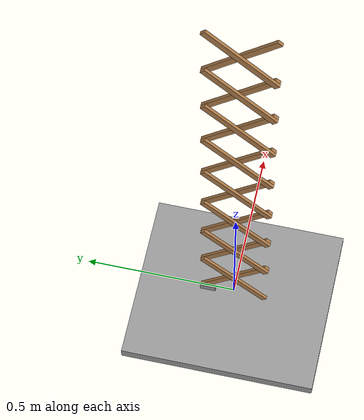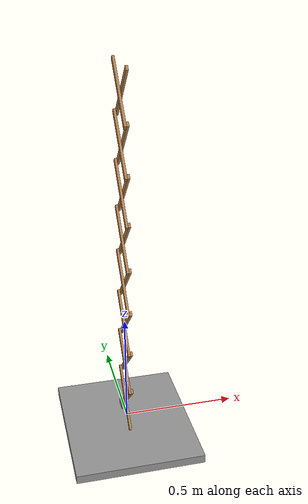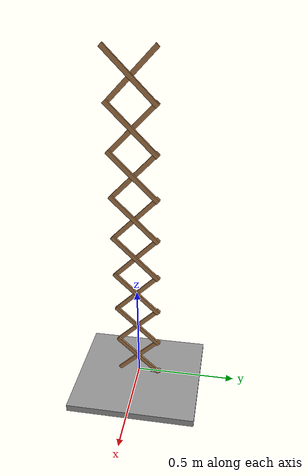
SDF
<sdf version="1.6">
 <model name="Robordion_leg_2_1">
  <link name="link_B_0">
   <pose>0.005 -0 0.098994 -0.785398 0 0</pose>
   <inertial>
    <mass>0.042</mass>
    <inertia>
     <ixx>0.0003164</ixx>
     <ixy>0</ixy>
     <ixz>0</ixz>
     <iyy>1.75e-06</iyy>
     <iyz>0</iyz>
     <izz>0.00031535</izz>
    </inertia>
   </inertial>
   <visual name="visual">
    <geometry><box><size>0.01 0.3 0.02</size></box></geometry>
    <material>
     <lighting>1</lighting>
     <script><uri>file://media/materials/scripts/gazebo.material</uri><name>Gazebo/Wood</name></script>
     <ambient>0.3 0.3 0.3 1</ambient>
     <diffuse>0.7 0.7 0.7 1</diffuse>
     <specular>0.01 0.01 0.01 1</specular>
     <emissive>0 0 0 1</emissive>
     <shader type="vertex"><normal_map>__default__</normal_map></shader>
    </material>
   </visual>
   <collision name="collision">
    <geometry><box><size>0.01 0.3 0.02</size></box></geometry>
    <surface>
     <friction>
      <ode><mu>1</mu><mu2>1</mu2><fdir1>0 0 0</fdir1><slip1>0</slip1><slip2>0</slip2></ode>
      <torsional>
       <coefficient>1</coefficient>
       <patch_radius>0</patch_radius>
       <surface_radius>0</surface_radius>
       <use_patch_radius>1</use_patch_radius>
       <ode><slip>0</slip></ode>
      </torsional>
     </friction>
     <bounce><restitution_coefficient>0</restitution_coefficient><threshold>1e+06</threshold></bounce>
     <contact>
      <collide_without_contact>0</collide_without_contact>
      <collide_without_contact_bitmask>1</collide_without_contact_bitmask>
      <collide_bitmask>1</collide_bitmask>
      <ode>
       <soft_cfm>0</soft_cfm>
       <soft_erp>0.2</soft_erp>
       <kp>1e+13</kp>
       <kd>1</kd>
       <max_vel>0.01</max_vel>
       <min_depth>0</min_depth>
      </ode>
      <bullet>
       <split_impulse>1</split_impulse>
       <split_impulse_penetration_threshold>-0.01</split_impulse_penetration_threshold>
       <soft_cfm>0</soft_cfm>
       <soft_erp>0.2</soft_erp>
       <kp>1e+13</kp>
       <kd>1</kd>
      </bullet>
     </contact>
    </surface>
   </collision>
  </link>
  <link name="link_A_0">
   <pose>-0.005 0 0.098994 0.785398 -0 0</pose>
   <inertial>
    <mass>0.042</mass>
    <inertia>
     <ixx>0.0003164</ixx>
     <ixy>0</ixy>
     <ixz>0</ixz>
     <iyy>1.75e-06</iyy>
     <iyz>0</iyz>
     <izz>0.00031535</izz>
    </inertia>
   </inertial>
   <visual name="visual_0">
    <geometry><box><size>0.01 0.3 0.02</size></box></geometry>
    <material>
     <lighting>1</lighting>
     <script><uri>file://media/materials/scripts/gazebo.material</uri><name>Gazebo/Wood</name></script>
     <ambient>0.3 0.3 0.3 1</ambient>
     <diffuse>0.7 0.7 0.7 1</diffuse>
     <specular>0.01 0.01 0.01 1</specular>
     <emissive>0 0 0 1</emissive>
     <shader type="vertex"><normal_map>__default__</normal_map></shader>
    </material>
   </visual>
   <collision name="collision">
    <geometry><box><size>0.01 0.3 0.02</size></box></geometry>
    <surface>
     <friction>
      <ode><mu>1</mu><mu2>1</mu2><fdir1>0 0 0</fdir1><slip1>0</slip1><slip2>0</slip2></ode>
      <torsional>
       <coefficient>1</coefficient>
       <patch_radius>0</patch_radius>
       <surface_radius>0</surface_radius>
       <use_patch_radius>1</use_patch_radius>
       <ode><slip>0</slip></ode>
      </torsional>
     </friction>
     <bounce><restitution_coefficient>0</restitution_coefficient><threshold>1e+06</threshold></bounce>
     <contact>
      <collide_without_contact>0</collide_without_contact>
      <collide_without_contact_bitmask>1</collide_without_contact_bitmask>
      <collide_bitmask>1</collide_bitmask>
      <ode>
       <soft_cfm>0</soft_cfm>
       <soft_erp>0.2</soft_erp>
       <kp>1e+13</kp>
       <kd>1</kd>
       <max_vel>0.01</max_vel>
       <min_depth>0</min_depth>
      </ode>
      <bullet>
       <split_impulse>1</split_impulse>
       <split_impulse_penetration_threshold>-0.01</split_impulse_penetration_threshold>
       <soft_cfm>0</soft_cfm>
       <soft_erp>0.2</soft_erp>
       <kp>1e+13</kp>
       <kd>1</kd>
      </bullet>
     </contact>
    </surface>
   </collision>
  </link>
  <link name="link_0_1_clone_0">
   <pose>0.005 -0 0.296984 -0.785398 0 0</pose>
   <inertial>
    <mass>0.042</mass>
    <inertia>
     <ixx>0.0003164</ixx>
     <ixy>0</ixy>
     <ixz>0</ixz>
     <iyy>1.75e-06</iyy>
     <iyz>0</iyz>
     <izz>0.00031535</izz>
    </inertia>
   </inertial>
   <visual name="visual_0">
    <geometry><box><size>0.01 0.3 0.02</size></box></geometry>
    <material>
     <lighting>1</lighting>
     <script><uri>file://media/materials/scripts/gazebo.material</uri><name>Gazebo/Wood</name></script>
     <ambient>0.3 0.3 0.3 1</ambient>
     <diffuse>0.7 0.7 0.7 1</diffuse>
     <specular>0.01 0.01 0.01 1</specular>
     <emissive>0 0 0 1</emissive>
     <shader type="vertex"><normal_map>__default__</normal_map></shader>
    </material>
   </visual>
   <collision name="collision">
    <geometry><box><size>0.01 0.3 0.02</size></box></geometry>
    <surface>
     <friction>
      <ode><mu>1</mu><mu2>1</mu2><fdir1>0 0 0</fdir1><slip1>0</slip1><slip2>0</slip2></ode>
      <torsional>
       <coefficient>1</coefficient>
       <patch_radius>0</patch_radius>
       <surface_radius>0</surface_radius>
       <use_patch_radius>1</use_patch_radius>
       <ode><slip>0</slip></ode>
      </torsional>
     </friction>
     <bounce><restitution_coefficient>0</restitution_coefficient><threshold>1e+06</threshold></bounce>
     <contact>
      <collide_without_contact>0</collide_without_contact>
      <collide_without_contact_bitmask>1</collide_without_contact_bitmask>
      <collide_bitmask>1</collide_bitmask>
      <ode>
       <soft_cfm>0</soft_cfm>
       <soft_erp>0.2</soft_erp>
       <kp>1e+13</kp>
       <kd>1</kd>
       <max_vel>0.01</max_vel>
       <min_depth>0</min_depth>
      </ode>
      <bullet>
       <split_impulse>1</split_impulse>
       <split_impulse_penetration_threshold>-0.01</split_impulse_penetration_threshold>
       <soft_cfm>0</soft_cfm>
       <soft_erp>0.2</soft_erp>
       <kp>1e+13</kp>
       <kd>1</kd>
      </bullet>
     </contact>
    </surface>
   </collision>
  </link>
  <link name="link_0_1_clone_clone">
   <pose>-0.005 -0 0.296984 0.785398 -0 0</pose>
   <inertial>
    <mass>0.042</mass>
    <inertia>
     <ixx>0.0003164</ixx>
     <ixy>0</ixy>
     <ixz>0</ixz>
     <iyy>1.75e-06</iyy>
     <iyz>0</iyz>
     <izz>0.00031535</izz>
    </inertia>
   </inertial>
   <visual name="visual_0">
    <geometry><box><size>0.01 0.3 0.02</size></box></geometry>
    <material>
     <lighting>1</lighting>
     <script><uri>file://media/materials/scripts/gazebo.material</uri><name>Gazebo/Wood</name></script>
     <ambient>0.3 0.3 0.3 1</ambient>
     <diffuse>0.7 0.7 0.7 1</diffuse>
     <specular>0.01 0.01 0.01 1</specular>
     <emissive>0 0 0 1</emissive>
     <shader type="vertex"><normal_map>__default__</normal_map></shader>
    </material>
   </visual>
   <collision name="collision">
    <geometry><box><size>0.01 0.3 0.02</size></box></geometry>
    <surface>
     <friction>
      <ode><mu>1</mu><mu2>1</mu2><fdir1>0 0 0</fdir1><slip1>0</slip1><slip2>0</slip2></ode>
      <torsional>
       <coefficient>1</coefficient>
       <patch_radius>0</patch_radius>
       <surface_radius>0</surface_radius>
       <use_patch_radius>1</use_patch_radius>
       <ode><slip>0</slip></ode>
      </torsional>
     </friction>
     <bounce><restitution_coefficient>0</restitution_coefficient><threshold>1e+06</threshold></bounce>
     <contact>
      <collide_without_contact>0</collide_without_contact>
      <collide_without_contact_bitmask>1</collide_without_contact_bitmask>
      <collide_bitmask>1</collide_bitmask>
      <ode>
       <soft_cfm>0</soft_cfm>
       <soft_erp>0.2</soft_erp>
       <kp>1e+13</kp>
       <kd>1</kd>
       <max_vel>0.01</max_vel>
       <min_depth>0</min_depth>
      </ode>
      <bullet>
       <split_impulse>1</split_impulse>
       <split_impulse_penetration_threshold>-0.01</split_impulse_penetration_threshold>
       <soft_cfm>0</soft_cfm>
       <soft_erp>0.2</soft_erp>
       <kp>1e+13</kp>
       <kd>1</kd>
      </bullet>
     </contact>
    </surface>
   </collision>
  </link>
  <link name="link_0_1_clone_clone_0">
   <pose>-0.005 -0 0.494974 0.785398 -0 0</pose>
   <inertial>
    <mass>0.042</mass>
    <inertia>
     <ixx>0.0003164</ixx>
     <ixy>0</ixy>
     <ixz>0</ixz>
     <iyy>1.75e-06</iyy>
     <iyz>0</iyz>
     <izz>0.00031535</izz>
    </inertia>
   </inertial>
   <visual name="visual_0">
    <geometry><box><size>0.01 0.3 0.02</size></box></geometry>
    <material>
     <lighting>1</lighting>
     <script><uri>file://media/materials/scripts/gazebo.material</uri><name>Gazebo/Wood</name></script>
     <ambient>0.3 0.3 0.3 1</ambient>
     <diffuse>0.7 0.7 0.7 1</diffuse>
     <specular>0.01 0.01 0.01 1</specular>
     <emissive>0 0 0 1</emissive>
     <shader type="vertex"><normal_map>__default__</normal_map></shader>
    </material>
   </visual>
   <collision name="collision">
    <geometry><box><size>0.01 0.3 0.02</size></box></geometry>
    <surface>
     <friction>
      <ode><mu>1</mu><mu2>1</mu2><fdir1>0 0 0</fdir1><slip1>0</slip1><slip2>0</slip2></ode>
      <torsional>
       <coefficient>1</coefficient>
       <patch_radius>0</patch_radius>
       <surface_radius>0</surface_radius>
       <use_patch_radius>1</use_patch_radius>
       <ode><slip>0</slip></ode>
      </torsional>
     </friction>
     <bounce><restitution_coefficient>0</restitution_coefficient><threshold>1e+06</threshold></bounce>
     <contact>
      <collide_without_contact>0</collide_without_contact>
      <collide_without_contact_bitmask>1</collide_without_contact_bitmask>
      <collide_bitmask>1</collide_bitmask>
      <ode>
       <soft_cfm>0</soft_cfm>
       <soft_erp>0.2</soft_erp>
       <kp>1e+13</kp>
       <kd>1</kd>
       <max_vel>0.01</max_vel>
       <min_depth>0</min_depth>
      </ode>
      <bullet>
       <split_impulse>1</split_impulse>
       <split_impulse_penetration_threshold>-0.01</split_impulse_penetration_threshold>
       <soft_cfm>0</soft_cfm>
       <soft_erp>0.2</soft_erp>
       <kp>1e+13</kp>
       <kd>1</kd>
      </bullet>
     </contact>
    </surface>
   </collision>
  </link>
  <link name="link_0_1_clone_clone_0_clone">
   <pose>0.005 -0 0.494974 -0.785398 0 0</pose>
   <inertial>
    <mass>0.042</mass>
    <inertia>
     <ixx>0.0003164</ixx>
     <ixy>0</ixy>
     <ixz>0</ixz>
     <iyy>1.75e-06</iyy>
     <iyz>0</iyz>
     <izz>0.00031535</izz>
    </inertia>
   </inertial>
   <visual name="visual_0">
    <geometry><box><size>0.01 0.3 0.02</size></box></geometry>
    <material>
     <lighting>1</lighting>
     <script><uri>file://media/materials/scripts/gazebo.material</uri><name>Gazebo/Wood</name></script>
     <ambient>0.3 0.3 0.3 1</ambient>
     <diffuse>0.7 0.7 0.7 1</diffuse>
     <specular>0.01 0.01 0.01 1</specular>
     <emissive>0 0 0 1</emissive>
     <shader type="vertex"><normal_map>__default__</normal_map></shader>
    </material>
   </visual>
   <collision name="collision">
    <geometry><box><size>0.01 0.3 0.02</size></box></geometry>
    <surface>
     <friction>
      <ode><mu>1</mu><mu2>1</mu2><fdir1>0 0 0</fdir1><slip1>0</slip1><slip2>0</slip2></ode>
      <torsional>
       <coefficient>1</coefficient>
       <patch_radius>0</patch_radius>
       <surface_radius>0</surface_radius>
       <use_patch_radius>1</use_patch_radius>
       <ode><slip>0</slip></ode>
      </torsional>
     </friction>
     <bounce><restitution_coefficient>0</restitution_coefficient><threshold>1e+06</threshold></bounce>
     <contact>
      <collide_without_contact>0</collide_without_contact>
      <collide_without_contact_bitmask>1</collide_without_contact_bitmask>
      <collide_bitmask>1</collide_bitmask>
      <ode>
       <soft_cfm>0</soft_cfm>
       <soft_erp>0.2</soft_erp>
       <kp>1e+13</kp>
       <kd>1</kd>
       <max_vel>0.01</max_vel>
       <min_depth>0</min_depth>
      </ode>
      <bullet>
       <split_impulse>1</split_impulse>
       <split_impulse_penetration_threshold>-0.01</split_impulse_penetration_threshold>
       <soft_cfm>0</soft_cfm>
       <soft_erp>0.2</soft_erp>
       <kp>1e+13</kp>
       <kd>1</kd>
      </bullet>
     </contact>
    </surface>
   </collision>
  </link>
  <link name="link_0_1_clone_clone_0_clone_clone">
   <pose>0.005 0 0.692964 -0.785398 0 0</pose>
   <inertial>
    <mass>0.042</mass>
    <inertia>
     <ixx>0.0003164</ixx>
     <ixy>0</ixy>
     <ixz>0</ixz>
     <iyy>1.75e-06</iyy>
     <iyz>0</iyz>
     <izz>0.00031535</izz>
    </inertia>
   </inertial>
   <visual name="visual_0">
    <geometry><box><size>0.01 0.3 0.02</size></box></geometry>
    <material>
     <lighting>1</lighting>
     <script><uri>file://media/materials/scripts/gazebo.material</uri><name>Gazebo/Wood</name></script>
     <ambient>0.3 0.3 0.3 1</ambient>
     <diffuse>0.7 0.7 0.7 1</diffuse>
     <specular>0.01 0.01 0.01 1</specular>
     <emissive>0 0 0 1</emissive>
     <shader type="vertex"><normal_map>__default__</normal_map></shader>
    </material>
   </visual>
   <collision name="collision">
    <geometry><box><size>0.01 0.3 0.02</size></box></geometry>
    <surface>
     <friction>
      <ode><mu>1</mu><mu2>1</mu2><fdir1>0 0 0</fdir1><slip1>0</slip1><slip2>0</slip2></ode>
      <torsional>
       <coefficient>1</coefficient>
       <patch_radius>0</patch_radius>
       <surface_radius>0</surface_radius>
       <use_patch_radius>1</use_patch_radius>
       <ode><slip>0</slip></ode>
      </torsional>
     </friction>
     <bounce><restitution_coefficient>0</restitution_coefficient><threshold>1e+06</threshold></bounce>
     <contact>
      <collide_without_contact>0</collide_without_contact>
      <collide_without_contact_bitmask>1</collide_without_contact_bitmask>
      <collide_bitmask>1</collide_bitmask>
      <ode>
       <soft_cfm>0</soft_cfm>
       <soft_erp>0.2</soft_erp>
       <kp>1e+13</kp>
       <kd>1</kd>
       <max_vel>0.01</max_vel>
       <min_depth>0</min_depth>
      </ode>
      <bullet>
       <split_impulse>1</split_impulse>
       <split_impulse_penetration_threshold>-0.01</split_impulse_penetration_threshold>
       <soft_cfm>0</soft_cfm>
       <soft_erp>0.2</soft_erp>
       <kp>1e+13</kp>
       <kd>1</kd>
      </bullet>
     </contact>
    </surface>
   </collision>
  </link>
  <link name="link_0_1_clone_clone_0_clone_clone_clone">
   <pose>-0.005 -0 0.692964 0.785398 -0 0</pose>
   <inertial>
    <mass>0.042</mass>
    <inertia>
     <ixx>0.0003164</ixx>
     <ixy>0</ixy>
     <ixz>0</ixz>
     <iyy>1.75e-06</iyy>
     <iyz>0</iyz>
     <izz>0.00031535</izz>
    </inertia>
   </inertial>
   <visual name="visual_0">
    <geometry><box><size>0.01 0.3 0.02</size></box></geometry>
    <material>
     <lighting>1</lighting>
     <script><uri>file://media/materials/scripts/gazebo.material</uri><name>Gazebo/Wood</name></script>
     <ambient>0.3 0.3 0.3 1</ambient>
     <diffuse>0.7 0.7 0.7 1</diffuse>
     <specular>0.01 0.01 0.01 1</specular>
     <emissive>0 0 0 1</emissive>
     <shader type="vertex"><normal_map>__default__</normal_map></shader>
    </material>
   </visual>
   <collision name="collision">
    <geometry><box><size>0.01 0.3 0.02</size></box></geometry>
    <surface>
     <friction>
      <ode><mu>1</mu><mu2>1</mu2><fdir1>0 0 0</fdir1><slip1>0</slip1><slip2>0</slip2></ode>
      <torsional>
       <coefficient>1</coefficient>
       <patch_radius>0</patch_radius>
       <surface_radius>0</surface_radius>
       <use_patch_radius>1</use_patch_radius>
       <ode><slip>0</slip></ode>
      </torsional>
     </friction>
     <bounce><restitution_coefficient>0</restitution_coefficient><threshold>1e+06</threshold></bounce>
     <contact>
      <collide_without_contact>0</collide_without_contact>
      <collide_without_contact_bitmask>1</collide_without_contact_bitmask>
      <collide_bitmask>1</collide_bitmask>
      <ode>
       <soft_cfm>0</soft_cfm>
       <soft_erp>0.2</soft_erp>
       <kp>1e+13</kp>
       <kd>1</kd>
       <max_vel>0.01</max_vel>
       <min_depth>0</min_depth>
      </ode>
      <bullet>
       <split_impulse>1</split_impulse>
       <split_impulse_penetration_threshold>-0.01</split_impulse_penetration_threshold>
       <soft_cfm>0</soft_cfm>
       <soft_erp>0.2</soft_erp>
       <kp>1e+13</kp>
       <kd>1</kd>
      </bullet>
     </contact>
    </surface>
   </collision>
  </link>
  <link name="link_0_1_clone_clone_0_clone_clone_clone_0">
   <pose>0.005 0 0.890954 -0.785398 0 0</pose>
   <inertial>
    <mass>0.042</mass>
    <inertia>
     <ixx>0.0003164</ixx>
     <ixy>0</ixy>
     <ixz>0</ixz>
     <iyy>1.75e-06</iyy>
     <iyz>0</iyz>
     <izz>0.00031535</izz>
    </inertia>
   </inertial>
   <visual name="visual_0">
    <geometry><box><size>0.01 0.3 0.02</size></box></geometry>
    <material>
     <lighting>1</lighting>
     <script><uri>file://media/materials/scripts/gazebo.material</uri><name>Gazebo/Wood</name></script>
     <ambient>0.3 0.3 0.3 1</ambient>
     <diffuse>0.7 0.7 0.7 1</diffuse>
     <specular>0.01 0.01 0.01 1</specular>
     <emissive>0 0 0 1</emissive>
     <shader type="vertex"><normal_map>__default__</normal_map></shader>
    </material>
   </visual>
   <collision name="collision">
    <geometry><box><size>0.01 0.3 0.02</size></box></geometry>
    <surface>
     <friction>
      <ode><mu>1</mu><mu2>1</mu2><fdir1>0 0 0</fdir1><slip1>0</slip1><slip2>0</slip2></ode>
      <torsional>
       <coefficient>1</coefficient>
       <patch_radius>0</patch_radius>
       <surface_radius>0</surface_radius>
       <use_patch_radius>1</use_patch_radius>
       <ode><slip>0</slip></ode>
      </torsional>
     </friction>
     <bounce><restitution_coefficient>0</restitution_coefficient><threshold>1e+06</threshold></bounce>
     <contact>
      <collide_without_contact>0</collide_without_contact>
      <collide_without_contact_bitmask>1</collide_without_contact_bitmask>
      <collide_bitmask>1</collide_bitmask>
      <ode>
       <soft_cfm>0</soft_cfm>
       <soft_erp>0.2</soft_erp>
       <kp>1e+13</kp>
       <kd>1</kd>
       <max_vel>0.01</max_vel>
       <min_depth>0</min_depth>
      </ode>
      <bullet>
       <split_impulse>1</split_impulse>
       <split_impulse_penetration_threshold>-0.01</split_impulse_penetration_threshold>
       <soft_cfm>0</soft_cfm>
       <soft_erp>0.2</soft_erp>
       <kp>1e+13</kp>
       <kd>1</kd>
      </bullet>
     </contact>
    </surface>
   </collision>
  </link>
  <link name="link_0_1_clone_clone_0_clone_clone_clone_0_clone">
   <pose>-0.005 -0 0.890954 0.785398 -0 0</pose>
   <inertial>
    <mass>0.042</mass>
    <inertia>
     <ixx>0.0003164</ixx>
     <ixy>0</ixy>
     <ixz>0</ixz>
     <iyy>1.75e-06</iyy>
     <iyz>0</iyz>
     <izz>0.00031535</izz>
    </inertia>
   </inertial>
   <visual name="visual_0">
    <geometry><box><size>0.01 0.3 0.02</size></box></geometry>
    <material>
     <lighting>1</lighting>
     <script><uri>file://media/materials/scripts/gazebo.material</uri><name>Gazebo/Wood</name></script>
     <ambient>0.3 0.3 0.3 1</ambient>
     <diffuse>0.7 0.7 0.7 1</diffuse>
     <specular>0.01 0.01 0.01 1</specular>
     <emissive>0 0 0 1</emissive>
     <shader type="vertex"><normal_map>__default__</normal_map></shader>
    </material>
   </visual>
   <collision name="collision">
    <geometry><box><size>0.01 0.3 0.02</size></box></geometry>
    <surface>
     <friction>
      <ode><mu>1</mu><mu2>1</mu2><fdir1>0 0 0</fdir1><slip1>0</slip1><slip2>0</slip2></ode>
      <torsional>
       <coefficient>1</coefficient>
       <patch_radius>0</patch_radius>
       <surface_radius>0</surface_radius>
       <use_patch_radius>1</use_patch_radius>
       <ode><slip>0</slip></ode>
      </torsional>
     </friction>
     <bounce><restitution_coefficient>0</restitution_coefficient><threshold>1e+06</threshold></bounce>
     <contact>
      <collide_without_contact>0</collide_without_contact>
      <collide_without_contact_bitmask>1</collide_without_contact_bitmask>
      <collide_bitmask>1</collide_bitmask>
      <ode>
       <soft_cfm>0</soft_cfm>
       <soft_erp>0.2</soft_erp>
       <kp>1e+13</kp>
       <kd>1</kd>
       <max_vel>0.01</max_vel>
       <min_depth>0</min_depth>
      </ode>
      <bullet>
       <split_impulse>1</split_impulse>
       <split_impulse_penetration_threshold>-0.01</split_impulse_penetration_threshold>
       <soft_cfm>0</soft_cfm>
       <soft_erp>0.2</soft_erp>
       <kp>1e+13</kp>
       <kd>1</kd>
      </bullet>
     </contact>
    </surface>
   </collision>
  </link>
  <link name="link_0_1_clone_clone_0_clone_clone_clone_0_clone_0">
   <pose>0.005 0 1.08894 -0.785398 0 0</pose>
   <inertial>
    <mass>0.042</mass>
    <inertia>
     <ixx>0.0003164</ixx>
     <ixy>0</ixy>
     <ixz>0</ixz>
     <iyy>1.75e-06</iyy>
     <iyz>0</iyz>
     <izz>0.00031535</izz>
    </inertia>
   </inertial>
   <visual name="visual_0">
    <geometry><box><size>0.01 0.3 0.02</size></box></geometry>
    <material>
     <lighting>1</lighting>
     <script><uri>file://media/materials/scripts/gazebo.material</uri><name>Gazebo/Wood</name></script>
     <ambient>0.3 0.3 0.3 1</ambient>
     <diffuse>0.7 0.7 0.7 1</diffuse>
     <specular>0.01 0.01 0.01 1</specular>
     <emissive>0 0 0 1</emissive>
     <shader type="vertex"><normal_map>__default__</normal_map></shader>
    </material>
   </visual>
   <collision name="collision">
    <geometry><box><size>0.01 0.3 0.02</size></box></geometry>
    <surface>
     <friction>
      <ode><mu>1</mu><mu2>1</mu2><fdir1>0 0 0</fdir1><slip1>0</slip1><slip2>0</slip2></ode>
      <torsional>
       <coefficient>1</coefficient>
       <patch_radius>0</patch_radius>
       <surface_radius>0</surface_radius>
       <use_patch_radius>1</use_patch_radius>
       <ode><slip>0</slip></ode>
      </torsional>
     </friction>
     <bounce><restitution_coefficient>0</restitution_coefficient><threshold>1e+06</threshold></bounce>
     <contact>
      <collide_without_contact>0</collide_without_contact>
      <collide_without_contact_bitmask>1</collide_without_contact_bitmask>
      <collide_bitmask>1</collide_bitmask>
      <ode>
       <soft_cfm>0</soft_cfm>
       <soft_erp>0.2</soft_erp>
       <kp>1e+13</kp>
       <kd>1</kd>
       <max_vel>0.01</max_vel>
       <min_depth>0</min_depth>
      </ode>
      <bullet>
       <split_impulse>1</split_impulse>
       <split_impulse_penetration_threshold>-0.01</split_impulse_penetration_threshold>
       <soft_cfm>0</soft_cfm>
       <soft_erp>0.2</soft_erp>
       <kp>1e+13</kp>
       <kd>1</kd>
      </bullet>
     </contact>
    </surface>
   </collision>
  </link>
  <link name="link_0_1_clone_clone_0_clone_clone_clone_0_clone_0_clone">
   <pose>-0.005 -0 1.08894 0.785398 -0 0</pose>
   <inertial>
    <mass>0.042</mass>
    <inertia>
     <ixx>0.0003164</ixx>
     <ixy>0</ixy>
     <ixz>0</ixz>
     <iyy>1.75e-06</iyy>
     <iyz>0</iyz>
     <izz>0.00031535</izz>
    </inertia>
   </inertial>
   <visual name="visual_0">
    <geometry><box><size>0.01 0.3 0.02</size></box></geometry>
    <material>
     <lighting>1</lighting>
     <script><uri>file://media/materials/scripts/gazebo.material</uri><name>Gazebo/Wood</name></script>
     <ambient>0.3 0.3 0.3 1</ambient>
     <diffuse>0.7 0.7 0.7 1</diffuse>
     <specular>0.01 0.01 0.01 1</specular>
     <emissive>0 0 0 1</emissive>
     <shader type="vertex"><normal_map>__default__</normal_map></shader>
    </material>
   </visual>
   <collision name="collision">
    <geometry><box><size>0.01 0.3 0.02</size></box></geometry>
    <surface>
     <friction>
      <ode><mu>1</mu><mu2>1</mu2><fdir1>0 0 0</fdir1><slip1>0</slip1><slip2>0</slip2></ode>
      <torsional>
       <coefficient>1</coefficient>
       <patch_radius>0</patch_radius>
       <surface_radius>0</surface_radius>
       <use_patch_radius>1</use_patch_radius>
       <ode><slip>0</slip></ode>
      </torsional>
     </friction>
     <bounce><restitution_coefficient>0</restitution_coefficient><threshold>1e+06</threshold></bounce>
     <contact>
      <collide_without_contact>0</collide_without_contact>
      <collide_without_contact_bitmask>1</collide_without_contact_bitmask>
      <collide_bitmask>1</collide_bitmask>
      <ode>
       <soft_cfm>0</soft_cfm>
       <soft_erp>0.2</soft_erp>
       <kp>1e+13</kp>
       <kd>1</kd>
       <max_vel>0.01</max_vel>
       <min_depth>0</min_depth>
      </ode>
      <bullet>
       <split_impulse>1</split_impulse>
       <split_impulse_penetration_threshold>-0.01</split_impulse_penetration_threshold>
       <soft_cfm>0</soft_cfm>
       <soft_erp>0.2</soft_erp>
       <kp>1e+13</kp>
       <kd>1</kd>
      </bullet>
     </contact>
    </surface>
   </collision>
  </link>
  <link name="link_0_1_clone_clone_0_clone_clone_clone_0_clone_0_clone_0">
   <pose>0.005 0 1.28693 -0.785398 0 0</pose>
   <inertial>
    <mass>0.042</mass>
    <inertia>
     <ixx>0.0003164</ixx>
     <ixy>0</ixy>
     <ixz>0</ixz>
     <iyy>1.75e-06</iyy>
     <iyz>0</iyz>
     <izz>0.00031535</izz>
    </inertia>
   </inertial>
   <visual name="visual_0">
    <geometry><box><size>0.01 0.3 0.02</size></box></geometry>
    <material>
     <lighting>1</lighting>
     <script><uri>file://media/materials/scripts/gazebo.material</uri><name>Gazebo/Wood</name></script>
     <ambient>0.3 0.3 0.3 1</ambient>
     <diffuse>0.7 0.7 0.7 1</diffuse>
     <specular>0.01 0.01 0.01 1</specular>
     <emissive>0 0 0 1</emissive>
     <shader type="vertex"><normal_map>__default__</normal_map></shader>
    </material>
   </visual>
   <collision name="collision">
    <geometry><box><size>0.01 0.3 0.02</size></box></geometry>
    <surface>
     <friction>
      <ode><mu>1</mu><mu2>1</mu2><fdir1>0 0 0</fdir1><slip1>0</slip1><slip2>0</slip2></ode>
      <torsional>
       <coefficient>1</coefficient>
       <patch_radius>0</patch_radius>
       <surface_radius>0</surface_radius>
       <use_patch_radius>1</use_patch_radius>
       <ode><slip>0</slip></ode>
      </torsional>
     </friction>
     <bounce><restitution_coefficient>0</restitution_coefficient><threshold>1e+06</threshold></bounce>
     <contact>
      <collide_without_contact>0</collide_without_contact>
      <collide_without_contact_bitmask>1</collide_without_contact_bitmask>
      <collide_bitmask>1</collide_bitmask>
      <ode>
       <soft_cfm>0</soft_cfm>
       <soft_erp>0.2</soft_erp>
       <kp>1e+13</kp>
       <kd>1</kd>
       <max_vel>0.01</max_vel>
       <min_depth>0</min_depth>
      </ode>
      <bullet>
       <split_impulse>1</split_impulse>
       <split_impulse_penetration_threshold>-0.01</split_impulse_penetration_threshold>
       <soft_cfm>0</soft_cfm>
       <soft_erp>0.2</soft_erp>
       <kp>1e+13</kp>
       <kd>1</kd>
      </bullet>
     </contact>
    </surface>
   </collision>
  </link>
  <link name="link_0_1_clone_clone_0_clone_clone_clone_0_clone_0_clone_0_clone">
   <pose>-0.005 0 1.28693 0.785398 -0 0</pose>
   <inertial>
    <mass>0.042</mass>
    <inertia>
     <ixx>0.0003164</ixx>
     <ixy>0</ixy>
     <ixz>0</ixz>
     <iyy>1.75e-06</iyy>
     <iyz>0</iyz>
     <izz>0.00031535</izz>
    </inertia>
   </inertial>
   <visual name="visual_0">
    <geometry><box><size>0.01 0.3 0.02</size></box></geometry>
    <material>
     <lighting>1</lighting>
     <script><uri>file://media/materials/scripts/gazebo.material</uri><name>Gazebo/Wood</name></script>
     <ambient>0.3 0.3 0.3 1</ambient>
     <diffuse>0.7 0.7 0.7 1</diffuse>
     <specular>0.01 0.01 0.01 1</specular>
     <emissive>0 0 0 1</emissive>
     <shader type="vertex"><normal_map>__default__</normal_map></shader>
    </material>
   </visual>
   <collision name="collision">
    <geometry><box><size>0.01 0.3 0.02</size></box></geometry>
    <surface>
     <friction>
      <ode><mu>1</mu><mu2>1</mu2><fdir1>0 0 0</fdir1><slip1>0</slip1><slip2>0</slip2></ode>
      <torsional>
       <coefficient>1</coefficient>
       <patch_radius>0</patch_radius>
       <surface_radius>0</surface_radius>
       <use_patch_radius>1</use_patch_radius>
       <ode><slip>0</slip></ode>
      </torsional>
     </friction>
     <bounce><restitution_coefficient>0</restitution_coefficient><threshold>1e+06</threshold></bounce>
     <contact>
      <collide_without_contact>0</collide_without_contact>
      <collide_without_contact_bitmask>1</collide_without_contact_bitmask>
      <collide_bitmask>1</collide_bitmask>
      <ode>
       <soft_cfm>0</soft_cfm>
       <soft_erp>0.2</soft_erp>
       <kp>1e+13</kp>
       <kd>1</kd>
       <max_vel>0.01</max_vel>
       <min_depth>0</min_depth>
      </ode>
      <bullet>
       <split_impulse>1</split_impulse>
       <split_impulse_penetration_threshold>-0.01</split_impulse_penetration_threshold>
       <soft_cfm>0</soft_cfm>
       <soft_erp>0.2</soft_erp>
       <kp>1e+13</kp>
       <kd>1</kd>
      </bullet>
     </contact>
    </surface>
   </collision>
  </link>
  <link name="link_0_1_clone_clone_0_clone_clone_clone_0_clone_0_clone_0_clone_0">
   <pose>0.005 0 1.48492 -0.785398 0 0</pose>
   <inertial>
    <mass>0.042</mass>
    <inertia>
     <ixx>0.0003164</ixx>
     <ixy>0</ixy>
     <ixz>0</ixz>
     <iyy>1.75e-06</iyy>
     <iyz>0</iyz>
     <izz>0.00031535</izz>
    </inertia>
   </inertial>
   <visual name="visual_0">
    <geometry><box><size>0.01 0.3 0.02</size></box></geometry>
    <material>
     <lighting>1</lighting>
     <script><uri>file://media/materials/scripts/gazebo.material</uri><name>Gazebo/Wood</name></script>
     <ambient>0.3 0.3 0.3 1</ambient>
     <diffuse>0.7 0.7 0.7 1</diffuse>
     <specular>0.01 0.01 0.01 1</specular>
     <emissive>0 0 0 1</emissive>
     <shader type="vertex"><normal_map>__default__</normal_map></shader>
    </material>
   </visual>
   <collision name="collision">
    <geometry><box><size>0.01 0.3 0.02</size></box></geometry>
    <surface>
     <friction>
      <ode><mu>1</mu><mu2>1</mu2><fdir1>0 0 0</fdir1><slip1>0</slip1><slip2>0</slip2></ode>
      <torsional>
       <coefficient>1</coefficient>
       <patch_radius>0</patch_radius>
       <surface_radius>0</surface_radius>
       <use_patch_radius>1</use_patch_radius>
       <ode><slip>0</slip></ode>
      </torsional>
     </friction>
     <bounce><restitution_coefficient>0</restitution_coefficient><threshold>1e+06</threshold></bounce>
     <contact>
      <collide_without_contact>0</collide_without_contact>
      <collide_without_contact_bitmask>1</collide_without_contact_bitmask>
      <collide_bitmask>1</collide_bitmask>
      <ode>
       <soft_cfm>0</soft_cfm>
       <soft_erp>0.2</soft_erp>
       <kp>1e+13</kp>
       <kd>1</kd>
       <max_vel>0.01</max_vel>
       <min_depth>0</min_depth>
      </ode>
      <bullet>
       <split_impulse>1</split_impulse>
       <split_impulse_penetration_threshold>-0.01</split_impulse_penetration_threshold>
       <soft_cfm>0</soft_cfm>
       <soft_erp>0.2</soft_erp>
       <kp>1e+13</kp>
       <kd>1</kd>
      </bullet>
     </contact>
    </surface>
   </collision>
  </link>
  <link name="link_0_1_clone_clone_0_clone_clone_clone_0_clone_0_clone_0_clone_0_clone">
   <pose>-0.005 0 1.48492 0.785398 -0 0</pose>
   <inertial>
    <mass>0.042</mass>
    <inertia>
     <ixx>0.0003164</ixx>
     <ixy>0</ixy>
     <ixz>0</ixz>
     <iyy>1.75e-06</iyy>
     <iyz>0</iyz>
     <izz>0.00031535</izz>
    </inertia>
   </inertial>
   <visual name="visual_0">
    <geometry><box><size>0.01 0.3 0.02</size></box></geometry>
    <material>
     <lighting>1</lighting>
     <script><uri>file://media/materials/scripts/gazebo.material</uri><name>Gazebo/Wood</name></script>
     <ambient>0.3 0.3 0.3 1</ambient>
     <diffuse>0.7 0.7 0.7 1</diffuse>
     <specular>0.01 0.01 0.01 1</specular>
     <emissive>0 0 0 1</emissive>
     <shader type="vertex"><normal_map>__default__</normal_map></shader>
    </material>
   </visual>
   <collision name="collision">
    <geometry><box><size>0.01 0.3 0.02</size></box></geometry>
    <surface>
     <friction>
      <ode><mu>1</mu><mu2>1</mu2><fdir1>0 0 0</fdir1><slip1>0</slip1><slip2>0</slip2></ode>
      <torsional>
       <coefficient>1</coefficient>
       <patch_radius>0</patch_radius>
       <surface_radius>0</surface_radius>
       <use_patch_radius>1</use_patch_radius>
       <ode><slip>0</slip></ode>
      </torsional>
     </friction>
     <bounce><restitution_coefficient>0</restitution_coefficient><threshold>1e+06</threshold></bounce>
     <contact>
      <collide_without_contact>0</collide_without_contact>
      <collide_without_contact_bitmask>1</collide_without_contact_bitmask>
      <collide_bitmask>1</collide_bitmask>
      <ode>
       <soft_cfm>0</soft_cfm>
       <soft_erp>0.2</soft_erp>
       <kp>1e+13</kp>
       <kd>1</kd>
       <max_vel>0.01</max_vel>
       <min_depth>0</min_depth>
      </ode>
      <bullet>
       <split_impulse>1</split_impulse>
       <split_impulse_penetration_threshold>-0.01</split_impulse_penetration_threshold>
       <soft_cfm>0</soft_cfm>
       <soft_erp>0.2</soft_erp>
       <kp>1e+13</kp>
       <kd>1</kd>
      </bullet>
     </contact>
    </surface>
   </collision>
  </link>
  <link name="slider_link">
   <pose>-0.005402 0.08727 -0.002108 0 -0 0</pose>
   <inertial>
    <mass>0.104936</mass>
    <inertia>
     <ixx>2.847e-05</ixx>
     <ixy>0</ixy>
     <ixz>0</ixz>
     <iyy>6.09e-06</iyy>
     <iyz>0</iyz>
     <izz>2.442e-05</izz>
    </inertia>
   </inertial>
   <visual name="visual">
    <geometry><box><size>0.010804 0.051733 0.02407</size></box></geometry>
    <material>
     <lighting>1</lighting>
     <script><uri>file://media/materials/scripts/gazebo.material</uri><name>Gazebo/Grey</name></script>
     <ambient>0.3 0.3 0.3 1</ambient>
     <diffuse>0.7 0.7 0.7 1</diffuse>
     <specular>0.01 0.01 0.01 1</specular>
     <emissive>0 0 0 1</emissive>
     <shader type="vertex"><normal_map>__default__</normal_map></shader>
    </material>
   </visual>
   <collision name="collision">
    <geometry><box><size>0.010804 0.051733 0.02407</size></box></geometry>
    <surface>
     <friction>
      <ode><mu>1</mu><mu2>1</mu2><fdir1>0 0 0</fdir1><slip1>0</slip1><slip2>0</slip2></ode>
      <torsional>
       <coefficient>1</coefficient>
       <patch_radius>0</patch_radius>
       <surface_radius>0</surface_radius>
       <use_patch_radius>1</use_patch_radius>
       <ode><slip>0</slip></ode>
      </torsional>
     </friction>
     <bounce><restitution_coefficient>0</restitution_coefficient><threshold>1e+06</threshold></bounce>
     <contact>
      <collide_without_contact>0</collide_without_contact>
      <collide_without_contact_bitmask>1</collide_without_contact_bitmask>
      <collide_bitmask>1</collide_bitmask>
      <ode>
       <soft_cfm>0</soft_cfm>
       <soft_erp>0.2</soft_erp>
       <kp>1e+13</kp>
       <kd>1</kd>
       <max_vel>0.01</max_vel>
       <min_depth>0</min_depth>
      </ode>
      <bullet>
       <split_impulse>1</split_impulse>
       <split_impulse_penetration_threshold>-0.01</split_impulse_penetration_threshold>
       <soft_cfm>0</soft_cfm>
       <soft_erp>0.2</soft_erp>
       <kp>1e+13</kp>
       <kd>1</kd>
      </bullet>
     </contact>
    </surface>
   </collision>
  </link>
  <link name="link_2">
   <pose>-0 0 -0.05 0 -0 0</pose>
   <inertial>
    <mass>108.654</mass>
    <inertia><ixx>3.7658</ixx><ixy>0</ixy><ixz>0</ixz><iyy>2.91659</iyy><iyz>0</iyz><izz>6.65595</izz></inertia>
   </inertial>
   <visual name="visual">
    <geometry><box><size>0.566232 0.643749 0.038213</size></box></geometry>
    <material>
     <lighting>1</lighting>
     <script><uri>file://media/materials/scripts/gazebo.material</uri><name>Gazebo/Grey</name></script>
     <ambient>0.3 0.3 0.3 1</ambient>
     <diffuse>0.7 0.7 0.7 1</diffuse>
     <specular>0.01 0.01 0.01 1</specular>
     <emissive>0 0 0 1</emissive>
     <shader type="vertex"><normal_map>__default__</normal_map></shader>
    </material>
   </visual>
   <collision name="collision">
    <geometry><box><size>0.566232 0.643749 0.038213</size></box></geometry>
    <surface>
     <friction>
      <ode><mu>1</mu><mu2>1</mu2><fdir1>0 0 0</fdir1><slip1>0</slip1><slip2>0</slip2></ode>
      <torsional>
       <coefficient>1</coefficient>
       <patch_radius>0</patch_radius>
       <surface_radius>0</surface_radius>
       <use_patch_radius>1</use_patch_radius>
       <ode><slip>0</slip></ode>
      </torsional>
     </friction>
     <bounce><restitution_coefficient>0</restitution_coefficient><threshold>1e+06</threshold></bounce>
     <contact>
      <collide_without_contact>0</collide_without_contact>
      <collide_without_contact_bitmask>1</collide_without_contact_bitmask>
      <collide_bitmask>1</collide_bitmask>
      <ode>
       <soft_cfm>0</soft_cfm>
       <soft_erp>0.2</soft_erp>
       <kp>1e+13</kp>
       <kd>1</kd>
       <max_vel>0.01</max_vel>
       <min_depth>0</min_depth>
      </ode>
      <bullet>
       <split_impulse>1</split_impulse>
       <split_impulse_penetration_threshold>-0.01</split_impulse_penetration_threshold>
       <soft_cfm>0</soft_cfm>
       <soft_erp>0.2</soft_erp>
       <kp>1e+13</kp>
       <kd>1</kd>
      </bullet>
     </contact>
    </surface>
   </collision>
  </link>
  <joint name="base_slider" type="prismatic">
   <parent>link_2</parent>
   <child>slider_link</child>
   <axis>
    <xyz>0 1 0</xyz>
    <use_parent_model_frame>0</use_parent_model_frame>
    <limit><lower>-1</lower><upper>1</upper><effort>-1</effort><velocity>-1</velocity></limit>
    <dynamics>
     <spring_reference>0</spring_reference>
     <spring_stiffness>0</spring_stiffness>
     <damping>0</damping>
     <friction>0</friction>
    </dynamics>
   </axis>
   <physics>
    <ode><limit><cfm>0</cfm><erp>0.2</erp></limit><suspension><cfm>0</cfm><erp>0.2</erp></suspension></ode>
   </physics>
  </joint>
  <joint name="rev_A_0" type="revolute">
   <parent>link_2</parent>
   <child>link_A_0</child>
   <pose>0 -0.14 0 0 -0 0</pose>
   <axis>
    <xyz>1 0 0</xyz>
    <use_parent_model_frame>0</use_parent_model_frame>
    <limit><lower>-1.2</lower><upper>1.2</upper><effort>-1</effort><velocity>-1</velocity></limit>
    <dynamics>
     <spring_reference>0</spring_reference>
     <spring_stiffness>0</spring_stiffness>
     <damping>0</damping>
     <friction>0</friction>
    </dynamics>
   </axis>
   <physics>
    <ode><limit><cfm>0</cfm><erp>0.2</erp></limit><suspension><cfm>0</cfm><erp>0.2</erp></suspension></ode>
   </physics>
  </joint>
  <joint name="rev_A_1" type="revolute">
   <parent>link_A_0</parent>
   <child>link_0_1_clone_0</child>
   <pose>0 0.14 0 0 -0 0</pose>
   <axis>
    <xyz>1 0 0</xyz>
    <use_parent_model_frame>0</use_parent_model_frame>
    <limit><lower>-1.2</lower><upper>1.2</upper><effort>-1</effort><velocity>-1</velocity></limit>
    <dynamics>
     <spring_reference>0</spring_reference>
     <spring_stiffness>0</spring_stiffness>
     <damping>0</damping>
     <friction>0</friction>
    </dynamics>
   </axis>
   <physics>
    <ode><limit><cfm>0</cfm><erp>0.2</erp></limit><suspension><cfm>0</cfm><erp>0.2</erp></suspension></ode>
   </physics>
  </joint>
  <joint name="rev_A_2" type="revolute">
   <parent>link_0_1_clone_0</parent>
   <child>link_0_1_clone_clone_0</child>
   <pose>0 -0.14 0 0 -0 0</pose>
   <axis>
    <xyz>1 0 0</xyz>
    <use_parent_model_frame>0</use_parent_model_frame>
    <limit><lower>-1.2</lower><upper>1.2</upper><effort>-1</effort><velocity>-1</velocity></limit>
    <dynamics>
     <spring_reference>0</spring_reference>
     <spring_stiffness>0</spring_stiffness>
     <damping>0</damping>
     <friction>0</friction>
    </dynamics>
   </axis>
   <physics>
    <ode><limit><cfm>0</cfm><erp>0.2</erp></limit><suspension><cfm>0</cfm><erp>0.2</erp></suspension></ode>
   </physics>
  </joint>
  <joint name="rev_A_3" type="revolute">
   <parent>link_0_1_clone_clone_0</parent>
   <child>link_0_1_clone_clone_0_clone_clone</child>
   <pose>0 0.14 0 0 -0 0</pose>
   <axis>
    <xyz>1 0 0</xyz>
    <use_parent_model_frame>0</use_parent_model_frame>
    <limit><lower>-1.2</lower><upper>1.2</upper><effort>-1</effort><velocity>-1</velocity></limit>
    <dynamics>
     <spring_reference>0</spring_reference>
     <spring_stiffness>0</spring_stiffness>
     <damping>0</damping>
     <friction>0</friction>
    </dynamics>
   </axis>
   <physics>
    <ode><limit><cfm>0</cfm><erp>0.2</erp></limit><suspension><cfm>0</cfm><erp>0.2</erp></suspension></ode>
   </physics>
  </joint>
  <joint name="rev_A_4" type="revolute">
   <parent>link_0_1_clone_clone_0_clone_clone</parent>
   <child>link_0_1_clone_clone_0_clone_clone_clone_0_clone</child>
   <pose>0 -0.14 0 0 -0 0</pose>
   <axis>
    <xyz>1 0 0</xyz>
    <use_parent_model_frame>0</use_parent_model_frame>
    <limit><lower>-1.2</lower><upper>1.2</upper><effort>-1</effort><velocity>-1</velocity></limit>
    <dynamics>
     <spring_reference>0</spring_reference>
     <spring_stiffness>0</spring_stiffness>
     <damping>0</damping>
     <friction>0</friction>
    </dynamics>
   </axis>
   <physics>
    <ode><limit><cfm>0</cfm><erp>0.2</erp></limit><suspension><cfm>0</cfm><erp>0.2</erp></suspension></ode>
   </physics>
  </joint>
  <joint name="rev_A_5" type="revolute">
   <parent>link_0_1_clone_clone_0_clone_clone_clone_0_clone</parent>
   <child>link_0_1_clone_clone_0_clone_clone_clone_0_clone_0</child>
   <pose>0 0.14 0 0 -0 0</pose>
   <axis>
    <xyz>1 0 0</xyz>
    <use_parent_model_frame>0</use_parent_model_frame>
    <limit><lower>-1.2</lower><upper>1.2</upper><effort>-1</effort><velocity>-1</velocity></limit>
    <dynamics>
     <spring_reference>0</spring_reference>
     <spring_stiffness>0</spring_stiffness>
     <damping>0</damping>
     <friction>0</friction>
    </dynamics>
   </axis>
   <physics>
    <ode><limit><cfm>0</cfm><erp>0.2</erp></limit><suspension><cfm>0</cfm><erp>0.2</erp></suspension></ode>
   </physics>
  </joint>
  <joint name="rev_A_6" type="revolute">
   <parent>link_0_1_clone_clone_0_clone_clone_clone_0_clone_0</parent>
   <child>link_0_1_clone_clone_0_clone_clone_clone_0_clone_0_clone_0_clone</child>
   <pose>0 -0.14 0 0 -0 0</pose>
   <axis>
    <xyz>1 0 0</xyz>
    <use_parent_model_frame>0</use_parent_model_frame>
    <limit><lower>-1.2</lower><upper>1.2</upper><effort>-1</effort><velocity>-1</velocity></limit>
    <dynamics>
     <spring_reference>0</spring_reference>
     <spring_stiffness>0</spring_stiffness>
     <damping>0</damping>
     <friction>0</friction>
    </dynamics>
   </axis>
   <physics>
    <ode><limit><cfm>0</cfm><erp>0.2</erp></limit><suspension><cfm>0</cfm><erp>0.2</erp></suspension></ode>
   </physics>
  </joint>
  <joint name="rev_A_7" type="revolute">
   <parent>link_0_1_clone_clone_0_clone_clone_clone_0_clone_0_clone_0_clone</parent>
   <child>link_0_1_clone_clone_0_clone_clone_clone_0_clone_0_clone_0_clone_0</child>
   <pose>0 0.14 0 0 -0 0</pose>
   <axis>
    <xyz>1 0 0</xyz>
    <use_parent_model_frame>0</use_parent_model_frame>
    <limit><lower>-1.2</lower><upper>1.2</upper><effort>-1</effort><velocity>-1</velocity></limit>
    <dynamics>
     <spring_reference>0</spring_reference>
     <spring_stiffness>0</spring_stiffness>
     <damping>0</damping>
     <friction>0</friction>
    </dynamics>
   </axis>
   <physics>
    <ode><limit><cfm>0</cfm><erp>0.2</erp></limit><suspension><cfm>0</cfm><erp>0.2</erp></suspension></ode>
   </physics>
  </joint>
  <joint name="rev_B_0" type="revolute">
   <parent>slider_link</parent>
   <child>link_B_0</child>
   <pose>0 0.14 0 0 -0 0</pose>
   <axis>
    <xyz>1 0 0</xyz>
    <use_parent_model_frame>0</use_parent_model_frame>
    <limit><lower>-1.2</lower><upper>1.2</upper><effort>-1</effort><velocity>-1</velocity></limit>
    <dynamics>
     <spring_reference>0</spring_reference>
     <spring_stiffness>0</spring_stiffness>
     <damping>0</damping>
     <friction>0</friction>
    </dynamics>
   </axis>
   <physics>
    <ode><limit><cfm>0</cfm><erp>0.2</erp></limit><suspension><cfm>0</cfm><erp>0.2</erp></suspension></ode>
   </physics>
  </joint>
  <joint name="rev_B_1" type="revolute">
   <parent>link_B_0</parent>
   <child>link_0_1_clone_clone</child>
   <pose>0 -0.14 0 0 -0 0</pose>
   <axis>
    <xyz>1 0 0</xyz>
    <use_parent_model_frame>0</use_parent_model_frame>
    <limit><lower>-1.2</lower><upper>1.2</upper><effort>-1</effort><velocity>-1</velocity></limit>
    <dynamics>
     <spring_reference>0</spring_reference>
     <spring_stiffness>0</spring_stiffness>
     <damping>0</damping>
     <friction>0</friction>
    </dynamics>
   </axis>
   <physics>
    <ode><limit><cfm>0</cfm><erp>0.2</erp></limit><suspension><cfm>0</cfm><erp>0.2</erp></suspension></ode>
   </physics>
  </joint>
  <joint name="rev_B_2" type="revolute">
   <parent>link_0_1_clone_clone</parent>
   <child>link_0_1_clone_clone_0_clone</child>
   <pose>0 0.14 0 0 -0 0</pose>
   <axis>
    <xyz>1 0 0</xyz>
    <use_parent_model_frame>0</use_parent_model_frame>
    <limit><lower>-1.2</lower><upper>1.2</upper><effort>-1</effort><velocity>-1</velocity></limit>
    <dynamics>
     <spring_reference>0</spring_reference>
     <spring_stiffness>0</spring_stiffness>
     <damping>0</damping>
     <friction>0</friction>
    </dynamics>
   </axis>
   <physics>
    <ode><limit><cfm>0</cfm><erp>0.2</erp></limit><suspension><cfm>0</cfm><erp>0.2</erp></suspension></ode>
   </physics>
  </joint>
  <joint name="rev_B_3" type="revolute">
   <parent>link_0_1_clone_clone_0_clone</parent>
   <child>link_0_1_clone_clone_0_clone_clone_clone</child>
   <pose>0 -0.14 0 0 -0 0</pose>
   <axis>
    <xyz>1 0 0</xyz>
    <use_parent_model_frame>0</use_parent_model_frame>
    <limit><lower>-1.2</lower><upper>1.2</upper><effort>-1</effort><velocity>-1</velocity></limit>
    <dynamics>
     <spring_reference>0</spring_reference>
     <spring_stiffness>0</spring_stiffness>
     <damping>0</damping>
     <friction>0</friction>
    </dynamics>
   </axis>
   <physics>
    <ode><limit><cfm>0</cfm><erp>0.2</erp></limit><suspension><cfm>0</cfm><erp>0.2</erp></suspension></ode>
   </physics>
  </joint>
  <joint name="rev_B_4" type="revolute">
   <parent>link_0_1_clone_clone_0_clone_clone_clone</parent>
   <child>link_0_1_clone_clone_0_clone_clone_clone_0</child>
   <pose>0 0.14 0 0 -0 0</pose>
   <axis>
    <xyz>1 0 0</xyz>
    <use_parent_model_frame>0</use_parent_model_frame>
    <limit><lower>-1.2</lower><upper>1.2</upper><effort>-1</effort><velocity>-1</velocity></limit>
    <dynamics>
     <spring_reference>0</spring_reference>
     <spring_stiffness>0</spring_stiffness>
     <damping>0</damping>
     <friction>0</friction>
    </dynamics>
   </axis>
   <physics>
    <ode><limit><cfm>0</cfm><erp>0.2</erp></limit><suspension><cfm>0</cfm><erp>0.2</erp></suspension></ode>
   </physics>
  </joint>
  <joint name="rev_B_5" type="revolute">
   <parent>link_0_1_clone_clone_0_clone_clone_clone_0</parent>
   <child>link_0_1_clone_clone_0_clone_clone_clone_0_clone_0_clone</child>
   <pose>0 -0.14 0 0 -0 0</pose>
   <axis>
    <xyz>1 0 0</xyz>
    <use_parent_model_frame>0</use_parent_model_frame>
    <limit><lower>-1.2</lower><upper>1.2</upper><effort>-1</effort><velocity>-1</velocity></limit>
    <dynamics>
     <spring_reference>0</spring_reference>
     <spring_stiffness>0</spring_stiffness>
     <damping>0</damping>
     <friction>0</friction>
    </dynamics>
   </axis>
   <physics>
    <ode><limit><cfm>0</cfm><erp>0.2</erp></limit><suspension><cfm>0</cfm><erp>0.2</erp></suspension></ode>
   </physics>
  </joint>
  <joint name="rev_B_6" type="revolute">
   <parent>link_0_1_clone_clone_0_clone_clone_clone_0_clone_0_clone</parent>
   <child>link_0_1_clone_clone_0_clone_clone_clone_0_clone_0_clone_0</child>
   <pose>0 0.14 0 0 -0 0</pose>
   <axis>
    <xyz>1 0 0</xyz>
    <use_parent_model_frame>0</use_parent_model_frame>
    <limit><lower>-1.2</lower><upper>1.2</upper><effort>-1</effort><velocity>-1</velocity></limit>
    <dynamics>
     <spring_reference>0</spring_reference>
     <spring_stiffness>0</spring_stiffness>
     <damping>0</damping>
     <friction>0</friction>
    </dynamics>
   </axis>
   <physics>
    <ode><limit><cfm>0</cfm><erp>0.2</erp></limit><suspension><cfm>0</cfm><erp>0.2</erp></suspension></ode>
   </physics>
  </joint>
  <joint name="rev_B_7" type="revolute">
   <parent>link_0_1_clone_clone_0_clone_clone_clone_0_clone_0_clone_0</parent>
   <child>link_0_1_clone_clone_0_clone_clone_clone_0_clone_0_clone_0_clone_0_clone</child>
   <pose>0 -0.14 0 0 -0 0</pose>
   <axis>
    <xyz>1 0 0</xyz>
    <use_parent_model_frame>0</use_parent_model_frame>
    <limit><lower>-1.2</lower><upper>1.2</upper><effort>-1</effort><velocity>-1</velocity></limit>
    <dynamics>
     <spring_reference>0</spring_reference>
     <spring_stiffness>0</spring_stiffness>
     <damping>0</damping>
     <friction>0</friction>
    </dynamics>
   </axis>
   <physics>
    <ode><limit><cfm>0</cfm><erp>0.2</erp></limit><suspension><cfm>0</cfm><erp>0.2</erp></suspension></ode>
   </physics>
  </joint>
  <joint name="rev_pin_0" type="revolute">
   <parent>link_A_0</parent>
   <child>link_B_0</child>
   <axis>
    <xyz>1 0 0</xyz>
    <use_parent_model_frame>0</use_parent_model_frame>
    <limit><lower>-1.57</lower><upper>1.57</upper><effort>-1</effort><velocity>-1</velocity></limit>
    <dynamics>
     <spring_reference>0</spring_reference>
     <spring_stiffness>0</spring_stiffness>
     <damping>0</damping>
     <friction>0</friction>
    </dynamics>
   </axis>
   <physics>
    <ode><limit><cfm>0</cfm><erp>0.2</erp></limit><suspension><cfm>0</cfm><erp>0.2</erp></suspension></ode>
   </physics>
  </joint>
  <joint name="rev_pin_1" type="revolute">
   <parent>link_0_1_clone_clone</parent>
   <child>link_0_1_clone_0</child>
   <axis>
    <xyz>1 0 0</xyz>
    <use_parent_model_frame>0</use_parent_model_frame>
    <limit><lower>-1.57</lower><upper>1.57</upper><effort>-1</effort><velocity>-1</velocity></limit>
    <dynamics>
     <spring_reference>0</spring_reference>
     <spring_stiffness>0</spring_stiffness>
     <damping>0</damping>
     <friction>0</friction>
    </dynamics>
   </axis>
   <physics>
    <ode><limit><cfm>0</cfm><erp>0.2</erp></limit><suspension><cfm>0</cfm><erp>0.2</erp></suspension></ode>
   </physics>
  </joint>
  <joint name="rev_pin_2" type="revolute">
   <parent>link_0_1_clone_clone_0</parent>
   <child>link_0_1_clone_clone_0_clone</child>
   <axis>
    <xyz>1 0 0</xyz>
    <use_parent_model_frame>0</use_parent_model_frame>
    <limit><lower>-1.57</lower><upper>1.57</upper><effort>-1</effort><velocity>-1</velocity></limit>
    <dynamics>
     <spring_reference>0</spring_reference>
     <spring_stiffness>0</spring_stiffness>
     <damping>0</damping>
     <friction>0</friction>
    </dynamics>
   </axis>
   <physics>
    <ode><limit><cfm>0</cfm><erp>0.2</erp></limit><suspension><cfm>0</cfm><erp>0.2</erp></suspension></ode>
   </physics>
  </joint>
  <joint name="rev_pin_3" type="revolute">
   <parent>link_0_1_clone_clone_0_clone_clone_clone</parent>
   <child>link_0_1_clone_clone_0_clone_clone</child>
   <axis>
    <xyz>1 0 0</xyz>
    <use_parent_model_frame>0</use_parent_model_frame>
    <limit><lower>-1.57</lower><upper>1.57</upper><effort>-1</effort><velocity>-1</velocity></limit>
    <dynamics>
     <spring_reference>0</spring_reference>
     <spring_stiffness>0</spring_stiffness>
     <damping>0</damping>
     <friction>0</friction>
    </dynamics>
   </axis>
   <physics>
    <ode><limit><cfm>0</cfm><erp>0.2</erp></limit><suspension><cfm>0</cfm><erp>0.2</erp></suspension></ode>
   </physics>
  </joint>
  <joint name="rev_pin_4" type="revolute">
   <parent>link_0_1_clone_clone_0_clone_clone_clone_0_clone</parent>
   <child>link_0_1_clone_clone_0_clone_clone_clone_0</child>
   <axis>
    <xyz>1 0 0</xyz>
    <use_parent_model_frame>0</use_parent_model_frame>
    <limit><lower>-1.57</lower><upper>1.57</upper><effort>-1</effort><velocity>-1</velocity></limit>
    <dynamics>
     <spring_reference>0</spring_reference>
     <spring_stiffness>0</spring_stiffness>
     <damping>0</damping>
     <friction>0</friction>
    </dynamics>
   </axis>
   <physics>
    <ode><limit><cfm>0</cfm><erp>0.2</erp></limit><suspension><cfm>0</cfm><erp>0.2</erp></suspension></ode>
   </physics>
  </joint>
  <joint name="rev_pin_5" type="revolute">
   <parent>link_0_1_clone_clone_0_clone_clone_clone_0_clone_0_clone</parent>
   <child>link_0_1_clone_clone_0_clone_clone_clone_0_clone_0</child>
   <axis>
    <xyz>1 0 0</xyz>
    <use_parent_model_frame>0</use_parent_model_frame>
    <limit><lower>-1.57</lower><upper>1.57</upper><effort>-1</effort><velocity>-1</velocity></limit>
    <dynamics>
     <spring_reference>0</spring_reference>
     <spring_stiffness>0</spring_stiffness>
     <damping>0</damping>
     <friction>0</friction>
    </dynamics>
   </axis>
   <physics>
    <ode><limit><cfm>0</cfm><erp>0.2</erp></limit><suspension><cfm>0</cfm><erp>0.2</erp></suspension></ode>
   </physics>
  </joint>
  <joint name="rev_pin_6" type="revolute">
   <parent>link_0_1_clone_clone_0_clone_clone_clone_0_clone_0_clone_0_clone</parent>
   <child>link_0_1_clone_clone_0_clone_clone_clone_0_clone_0_clone_0</child>
   <axis>
    <xyz>1 0 0</xyz>
    <use_parent_model_frame>0</use_parent_model_frame>
    <limit><lower>-1.57</lower><upper>1.57</upper><effort>-1</effort><velocity>-1</velocity></limit>
    <dynamics>
     <spring_reference>0</spring_reference>
     <spring_stiffness>0</spring_stiffness>
     <damping>0</damping>
     <friction>0</friction>
    </dynamics>
   </axis>
   <physics>
    <ode><limit><cfm>0</cfm><erp>0.2</erp></limit><suspension><cfm>0</cfm><erp>0.2</erp></suspension></ode>
   </physics>
  </joint>
  <joint name="rev_pin_7" type="revolute">
   <parent>link_0_1_clone_clone_0_clone_clone_clone_0_clone_0_clone_0_clone_0_clone</parent>
   <child>link_0_1_clone_clone_0_clone_clone_clone_0_clone_0_clone_0_clone_0</child>
   <axis>
    <xyz>1 0 0</xyz>
    <use_parent_model_frame>0</use_parent_model_frame>
    <limit><lower>-1.57</lower><upper>1.57</upper><effort>-1</effort><velocity>-1</velocity></limit>
    <dynamics>
     <spring_reference>0</spring_reference>
     <spring_stiffness>0</spring_stiffness>
     <damping>0</damping>
     <friction>0</friction>
    </dynamics>
   </axis>
   <physics>
    <ode><limit><cfm>0</cfm><erp>0.2</erp></limit><suspension><cfm>0</cfm><erp>0.2</erp></suspension></ode>
   </physics>
  </joint>
  <static>0</static>
 </model>
</sdf>
